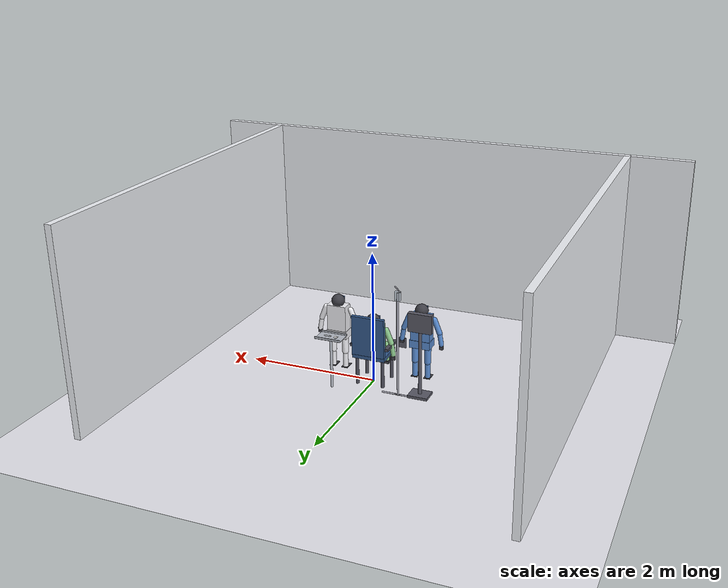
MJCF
<?xml version="1.0" encoding="utf-8"?>
<mujoco model="clinical_injection_sim">
  <compiler angle="degree" coordinate="local"/>

  <option gravity="0 0 -9.81" timestep="0.002">
    <flag warmstart="enable"/>
  </option>

  <default>
    <joint armature="0.01" damping="0.5" limited="true"/>
    <geom condim="3" friction="1.0 0.5 0.5" margin="0.001"/>
  </default>

  <asset>
    <!-- Environment Materials -->
    <material name="floor_tile" rgba="0.92 0.92 0.95 1" specular="0.3"/>
    <material name="wall" rgba="0.95 0.96 0.98 1"/>
    <material name="ceiling" rgba="0.98 0.98 1.0 1"/>

    <!-- Role-Based Robot Materials -->
    <material name="doctor_shell" rgba="0.95 0.95 0.97 1" specular="0.4"/>
    <material name="nurse_shell" rgba="0.35 0.55 0.82 1" specular="0.3"/>
    <material name="patient_gown" rgba="0.55 0.78 0.55 1" specular="0.1"/>
    <material name="robot_joint" rgba="0.25 0.25 0.28 1" specular="0.6"/>
    <material name="robot_visor" rgba="0.1 0.3 0.6 0.8" specular="0.8"/>

    <!-- Medical Equipment Materials -->
    <material name="chair_frame" rgba="0.3 0.3 0.35 1" specular="0.5"/>
    <material name="chair_cushion" rgba="0.2 0.35 0.55 1" specular="0.1"/>
    <material name="syringe_body" rgba="0.85 0.87 0.9 1" specular="0.7"/>
    <material name="syringe_plunger" rgba="0.4 0.4 0.45 1"/>
    <material name="needle" rgba="0.75 0.77 0.8 1" specular="0.9"/>
    <material name="tray_metal" rgba="0.72 0.74 0.78 1" specular="0.8"/>
    <material name="iv_stand" rgba="0.65 0.65 0.7 1" specular="0.6"/>
    <material name="iv_bag" rgba="0.8 0.85 0.9 0.7"/>
    <material name="monitor_screen" rgba="0.05 0.15 0.05 1" specular="0.2"/>
    <material name="monitor_body" rgba="0.35 0.35 0.4 1"/>
  </asset>

  <worldbody>
    <!-- Ground Plane -->
    <geom name="floor" type="plane" size="4 4 0.05" material="floor_tile"/>
    <light name="overhead" pos="0 0 2.8" dir="0 0 -1" diffuse="0.9 0.9 0.95"
           specular="0.3 0.3 0.3" castshadow="true"/>
    <light name="fill_light" pos="2 -2 2.5" dir="-0.5 0.5 -0.7" diffuse="0.3 0.3 0.35"/>

    <!-- Hospital Room Walls -->
    <geom name="wall_back" type="box" size="4 0.05 1.5" pos="0 -3 1.5" material="wall"/>
    <geom name="wall_left" type="box" size="0.05 3 1.5" pos="-3 0 1.5" material="wall"/>
    <geom name="wall_right" type="box" size="0.05 3 1.5" pos="3 0 1.5" material="wall"/>

    <!-- EXAMINATION CHAIR (Patient seating) -->
    <body name="exam_chair" pos="0 0 0">
      <!-- Chair legs -->
      <geom name="chair_leg_fl" type="cylinder" size="0.025" fromto="-0.2 -0.2 0 -0.2 -0.2 0.45"
            material="chair_frame"/>
      <geom name="chair_leg_fr" type="cylinder" size="0.025" fromto="0.2 -0.2 0 0.2 -0.2 0.45"
            material="chair_frame"/>
      <geom name="chair_leg_bl" type="cylinder" size="0.025" fromto="-0.2 0.15 0 -0.2 0.15 0.45"
            material="chair_frame"/>
      <geom name="chair_leg_br" type="cylinder" size="0.025" fromto="0.2 0.15 0 0.2 0.15 0.45"
            material="chair_frame"/>
      <!-- Seat -->
      <geom name="chair_seat" type="box" size="0.25 0.22 0.03" pos="0 0 0.47"
            material="chair_cushion"/>
      <!-- Backrest -->
      <geom name="chair_back" type="box" size="0.25 0.03 0.3" pos="0 0.2 0.8"
            material="chair_cushion"/>
      <!-- Right armrest -->
      <geom name="armrest_r" type="box" size="0.03 0.18 0.02" pos="0.27 0 0.62"
            material="chair_frame"/>
      <!-- Left armrest -->
      <geom name="armrest_l" type="box" size="0.03 0.18 0.02" pos="-0.27 0 0.62"
            material="chair_frame"/>
    </body>

    <!-- PATIENT (Seated G1 Humanoid) -->
    <body name="patient_root" pos="0 0 0.5">
      <!-- Pelvis / Hip -->
      <geom name="patient_pelvis" type="box" size="0.16 0.1 0.06" pos="0 0 0"
            material="patient_gown"/>

      <!-- Torso -->
      <body name="patient_torso" pos="0 0 0.06">
        <geom name="patient_torso_geom" type="box" size="0.15 0.09 0.18"
              pos="0 0 0.18" material="patient_gown"/>

        <!-- Head -->
        <body name="patient_head" pos="0 0 0.42">
          <geom name="patient_head_geom" type="sphere" size="0.1" material="robot_joint"/>
          <geom name="patient_visor" type="box" size="0.07 0.001 0.03" pos="0 -0.09 0.02"
                material="robot_visor"/>
        </body>

        <!-- Right Upper Arm (INJECTION SITE - deltoid region) -->
        <body name="patient_r_shoulder" pos="0.2 0 0.3">
          <joint name="patient_r_shoulder_pitch" type="hinge" axis="1 0 0"
                 range="-90 90" pos="0 0 0"/>
          <geom name="patient_r_upper_arm" type="capsule" size="0.04"
                fromto="0 0 0 0.08 0 -0.2" material="patient_gown"/>

          <!-- Deltoid injection target site -->
          <site name="injection_target" pos="0.04 -0.04 -0.08" size="0.025"
                rgba="1 0.2 0.2 0.5"/>

          <!-- Right Forearm -->
          <body name="patient_r_elbow" pos="0.08 0 -0.2">
            <joint name="patient_r_elbow_flex" type="hinge" axis="1 0 0"
                   range="0 130" pos="0 0 0"/>
            <geom name="patient_r_forearm" type="capsule" size="0.035"
                  fromto="0 0 0 0.03 0 -0.18" material="patient_gown"/>
            <geom name="patient_r_hand" type="box" size="0.03 0.015 0.04"
                  pos="0.03 0 -0.22" material="robot_joint"/>
          </body>
        </body>

        <!-- Left Upper Arm -->
        <body name="patient_l_shoulder" pos="-0.2 0 0.3">
          <joint name="patient_l_shoulder_pitch" type="hinge" axis="1 0 0"
                 range="-90 90" pos="0 0 0"/>
          <geom name="patient_l_upper_arm" type="capsule" size="0.04"
                fromto="0 0 0 -0.08 0 -0.2" material="patient_gown"/>
          <body name="patient_l_elbow" pos="-0.08 0 -0.2">
            <joint name="patient_l_elbow_flex" type="hinge" axis="1 0 0"
                   range="0 130" pos="0 0 0"/>
            <geom name="patient_l_forearm" type="capsule" size="0.035"
                  fromto="0 0 0 -0.03 0 -0.18" material="patient_gown"/>
            <geom name="patient_l_hand" type="box" size="0.03 0.015 0.04"
                  pos="-0.03 0 -0.22" material="robot_joint"/>
          </body>
        </body>
      </body>

      <!-- Right Thigh (seated, horizontal) -->
      <body name="patient_r_hip" pos="0.1 0 0">
        <joint name="patient_r_hip_flex" type="hinge" axis="1 0 0"
               range="-120 30" pos="0 0 0"/>
        <geom name="patient_r_thigh" type="capsule" size="0.05"
              fromto="0 0 0 0 -0.25 0" material="patient_gown"/>
        <body name="patient_r_knee" pos="0 -0.25 0">
          <joint name="patient_r_knee_flex" type="hinge" axis="1 0 0"
                 range="-130 0" pos="0 0 0"/>
          <geom name="patient_r_shin" type="capsule" size="0.04"
                fromto="0 0 0 0 0 -0.25" material="patient_gown"/>
          <geom name="patient_r_foot" type="box" size="0.05 0.08 0.02"
                pos="0 -0.03 -0.27" material="robot_joint"/>
        </body>
      </body>

      <!-- Left Thigh (seated, horizontal) -->
      <body name="patient_l_hip" pos="-0.1 0 0">
        <joint name="patient_l_hip_flex" type="hinge" axis="1 0 0"
               range="-120 30" pos="0 0 0"/>
        <geom name="patient_l_thigh" type="capsule" size="0.05"
              fromto="0 0 0 0 -0.25 0" material="patient_gown"/>
        <body name="patient_l_knee" pos="0 -0.25 0">
          <joint name="patient_l_knee_flex" type="hinge" axis="1 0 0"
                 range="-130 0" pos="0 0 0"/>
          <geom name="patient_l_shin" type="capsule" size="0.04"
                fromto="0 0 0 0 0 -0.25" material="patient_gown"/>
          <geom name="patient_l_foot" type="box" size="0.05 0.08 0.02"
                pos="0 -0.03 -0.27" material="robot_joint"/>
        </body>
      </body>
    </body>

    <!-- DOCTOR (Standing G1 Humanoid with Syringe) -->
    <body name="doctor_root" pos="0.7 -0.3 0">
      <!-- Pelvis -->
      <geom name="doctor_pelvis" type="box" size="0.16 0.1 0.06" pos="0 0 0.55"
            material="doctor_shell"/>

      <!-- Torso -->
      <body name="doctor_torso" pos="0 0 0.61">
        <geom name="doctor_torso_geom" type="box" size="0.15 0.09 0.2"
              pos="0 0 0.2" material="doctor_shell"/>
        <!-- Medical cross emblem -->
        <geom name="doctor_cross_h" type="box" size="0.04 0.001 0.01"
              pos="0 -0.091 0.3" rgba="0.8 0.15 0.15 1"/>
        <geom name="doctor_cross_v" type="box" size="0.01 0.001 0.04"
              pos="0 -0.091 0.3" rgba="0.8 0.15 0.15 1"/>

        <!-- Head -->
        <body name="doctor_head" pos="0 0 0.46">
          <geom name="doctor_head_geom" type="sphere" size="0.1" material="robot_joint"/>
          <geom name="doctor_visor" type="box" size="0.07 0.001 0.03" pos="0 -0.09 0.02"
                material="robot_visor"/>
        </body>

        <!-- Right Arm (holds syringe) -->
        <body name="doctor_r_shoulder" pos="0.2 0 0.34">
          <joint name="doctor_r_shoulder_pitch" type="hinge" axis="1 0 0"
                 range="-180 90" pos="0 0 0"/>
          <joint name="doctor_r_shoulder_yaw" type="hinge" axis="0 0 1"
                 range="-90 90" pos="0 0 0"/>
          <geom name="doctor_r_upper_arm" type="capsule" size="0.04"
                fromto="0 0 0 0.08 0 -0.2" material="doctor_shell"/>
          <body name="doctor_r_elbow" pos="0.08 0 -0.2">
            <joint name="doctor_r_elbow_flex" type="hinge" axis="1 0 0"
                   range="0 140" pos="0 0 0"/>
            <geom name="doctor_r_forearm" type="capsule" size="0.035"
                  fromto="0 0 0 0.03 0 -0.18" material="doctor_shell"/>

            <!-- Hand holding syringe -->
            <body name="doctor_r_hand" pos="0.03 0 -0.2">
              <joint name="doctor_r_wrist" type="hinge" axis="0 1 0"
                     range="-45 45" pos="0 0 0"/>
              <geom name="doctor_hand_geom" type="box" size="0.03 0.02 0.04"
                    material="robot_joint"/>
              <!-- Syringe -->
              <geom name="syringe_barrel" type="cylinder" size="0.012 0.06"
                    pos="0 0 -0.08" material="syringe_body"/>
              <geom name="syringe_plunger" type="cylinder" size="0.008 0.03"
                    pos="0 0 -0.02" material="syringe_plunger"/>
              <geom name="syringe_needle" type="cylinder" size="0.002 0.025"
                    pos="0 0 -0.155" material="needle"/>
              <!-- Needle tip site for contact detection -->
              <site name="needle_tip" pos="0 0 -0.18" size="0.003"
                    rgba="0.8 0.8 0.85 1"/>
            </body>
          </body>
        </body>

        <!-- Left Arm -->
        <body name="doctor_l_shoulder" pos="-0.2 0 0.34">
          <joint name="doctor_l_shoulder_pitch" type="hinge" axis="1 0 0"
                 range="-180 90" pos="0 0 0"/>
          <geom name="doctor_l_upper_arm" type="capsule" size="0.04"
                fromto="0 0 0 -0.08 0 -0.2" material="doctor_shell"/>
          <body name="doctor_l_elbow" pos="-0.08 0 -0.2">
            <joint name="doctor_l_elbow_flex" type="hinge" axis="1 0 0"
                   range="0 140" pos="0 0 0"/>
            <geom name="doctor_l_forearm" type="capsule" size="0.035"
                  fromto="0 0 0 -0.03 0 -0.18" material="doctor_shell"/>
            <geom name="doctor_l_hand" type="box" size="0.03 0.015 0.04"
                  pos="-0.03 0 -0.22" material="robot_joint"/>
          </body>
        </body>
      </body>

      <!-- Right Leg -->
      <body name="doctor_r_hip" pos="0.1 0 0.5">
        <joint name="doctor_r_hip_flex" type="hinge" axis="1 0 0"
               range="-30 90" pos="0 0 0"/>
        <geom name="doctor_r_thigh" type="capsule" size="0.05"
              fromto="0 0 0 0 0 -0.25" material="doctor_shell"/>
        <body name="doctor_r_knee" pos="0 0 -0.25">
          <joint name="doctor_r_knee_flex" type="hinge" axis="1 0 0"
                 range="0 130" pos="0 0 0"/>
          <geom name="doctor_r_shin" type="capsule" size="0.04"
                fromto="0 0 0 0 0 -0.25" material="doctor_shell"/>
          <geom name="doctor_r_foot" type="box" size="0.05 0.08 0.02"
                pos="0 -0.03 -0.27" material="robot_joint"/>
        </body>
      </body>

      <!-- Left Leg -->
      <body name="doctor_l_hip" pos="-0.1 0 0.5">
        <joint name="doctor_l_hip_flex" type="hinge" axis="1 0 0"
               range="-30 90" pos="0 0 0"/>
        <geom name="doctor_l_thigh" type="capsule" size="0.05"
              fromto="0 0 0 0 0 -0.25" material="doctor_shell"/>
        <body name="doctor_l_knee" pos="0 0 -0.25">
          <joint name="doctor_l_knee_flex" type="hinge" axis="1 0 0"
                 range="0 130" pos="0 0 0"/>
          <geom name="doctor_l_shin" type="capsule" size="0.04"
                fromto="0 0 0 0 0 -0.25" material="doctor_shell"/>
          <geom name="doctor_l_foot" type="box" size="0.05 0.08 0.02"
                pos="0 -0.03 -0.27" material="robot_joint"/>
        </body>
      </body>
    </body>

    <!-- NURSE (Standing G1 Humanoid) -->
    <body name="nurse_root" pos="-0.6 -0.4 0">
      <!-- Pelvis -->
      <geom name="nurse_pelvis" type="box" size="0.16 0.1 0.06" pos="0 0 0.55"
            material="nurse_shell"/>

      <!-- Torso -->
      <body name="nurse_torso" pos="0 0 0.61">
        <geom name="nurse_torso_geom" type="box" size="0.15 0.09 0.2"
              pos="0 0 0.2" material="nurse_shell"/>
        <!-- Medical plus badge -->
        <geom name="nurse_badge_h" type="box" size="0.03 0.001 0.008"
              pos="0.1 -0.091 0.3" rgba="1 1 1 1"/>
        <geom name="nurse_badge_v" type="box" size="0.008 0.001 0.03"
              pos="0.1 -0.091 0.3" rgba="1 1 1 1"/>

        <!-- Head -->
        <body name="nurse_head" pos="0 0 0.46">
          <geom name="nurse_head_geom" type="sphere" size="0.1" material="robot_joint"/>
          <geom name="nurse_visor" type="box" size="0.07 0.001 0.03" pos="0 -0.09 0.02"
                material="robot_visor"/>
        </body>

        <!-- Right Arm (holding clipboard/tablet) -->
        <body name="nurse_r_shoulder" pos="0.2 0 0.34">
          <joint name="nurse_r_shoulder_pitch" type="hinge" axis="1 0 0"
                 range="-180 90" pos="0 0 0"/>
          <geom name="nurse_r_upper_arm" type="capsule" size="0.04"
                fromto="0 0 0 0.08 0 -0.2" material="nurse_shell"/>
          <body name="nurse_r_elbow" pos="0.08 0 -0.2">
            <joint name="nurse_r_elbow_flex" type="hinge" axis="1 0 0"
                   range="0 140" pos="0 0 0"/>
            <geom name="nurse_r_forearm" type="capsule" size="0.035"
                  fromto="0 0 0 0.03 0 -0.18" material="nurse_shell"/>
            <body name="nurse_r_hand" pos="0.03 0 -0.2">
              <geom name="nurse_hand_r" type="box" size="0.03 0.015 0.04"
                    material="robot_joint"/>
              <!-- Tablet/clipboard -->
              <geom name="nurse_tablet" type="box" size="0.06 0.005 0.08"
                    pos="0 -0.02 -0.06" material="monitor_body"/>
              <geom name="nurse_tablet_screen" type="box" size="0.05 0.001 0.065"
                    pos="0 -0.026 -0.06" material="monitor_screen"/>
            </body>
          </body>
        </body>

        <!-- Left Arm -->
        <body name="nurse_l_shoulder" pos="-0.2 0 0.34">
          <joint name="nurse_l_shoulder_pitch" type="hinge" axis="1 0 0"
                 range="-180 90" pos="0 0 0"/>
          <geom name="nurse_l_upper_arm" type="capsule" size="0.04"
                fromto="0 0 0 -0.08 0 -0.2" material="nurse_shell"/>
          <body name="nurse_l_elbow" pos="-0.08 0 -0.2">
            <joint name="nurse_l_elbow_flex" type="hinge" axis="1 0 0"
                   range="0 140" pos="0 0 0"/>
            <geom name="nurse_l_forearm" type="capsule" size="0.035"
                  fromto="0 0 0 -0.03 0 -0.18" material="nurse_shell"/>
            <geom name="nurse_l_hand" type="box" size="0.03 0.015 0.04"
                  pos="-0.03 0 -0.22" material="robot_joint"/>
          </body>
        </body>
      </body>

      <!-- Right Leg -->
      <body name="nurse_r_hip" pos="0.1 0 0.5">
        <joint name="nurse_r_hip_flex" type="hinge" axis="1 0 0"
               range="-30 90" pos="0 0 0"/>
        <geom name="nurse_r_thigh" type="capsule" size="0.05"
              fromto="0 0 0 0 0 -0.25" material="nurse_shell"/>
        <body name="nurse_r_knee" pos="0 0 -0.25">
          <joint name="nurse_r_knee_flex" type="hinge" axis="1 0 0"
                 range="0 130" pos="0 0 0"/>
          <geom name="nurse_r_shin" type="capsule" size="0.04"
                fromto="0 0 0 0 0 -0.25" material="nurse_shell"/>
          <geom name="nurse_r_foot" type="box" size="0.05 0.08 0.02"
                pos="0 -0.03 -0.27" material="robot_joint"/>
        </body>
      </body>

      <!-- Left Leg -->
      <body name="nurse_l_hip" pos="-0.1 0 0.5">
        <joint name="nurse_l_hip_flex" type="hinge" axis="1 0 0"
               range="-30 90" pos="0 0 0"/>
        <geom name="nurse_l_thigh" type="capsule" size="0.05"
              fromto="0 0 0 0 0 -0.25" material="nurse_shell"/>
        <body name="nurse_l_knee" pos="0 0 -0.25">
          <joint name="nurse_l_knee_flex" type="hinge" axis="1 0 0"
                 range="0 130" pos="0 0 0"/>
          <geom name="nurse_l_shin" type="capsule" size="0.04"
                fromto="0 0 0 0 0 -0.25" material="nurse_shell"/>
          <geom name="nurse_l_foot" type="box" size="0.05 0.08 0.02"
                pos="0 -0.03 -0.27" material="robot_joint"/>
        </body>
      </body>
    </body>

    <!-- MEDICAL EQUIPMENT -->

    <!-- IV Stand -->
    <body name="iv_stand" pos="-0.5 0.3 0">
      <geom name="iv_pole" type="cylinder" size="0.015 0.8" pos="0 0 0.8"
            material="iv_stand"/>
      <geom name="iv_base_1" type="cylinder" size="0.012 0.15" pos="0.1 0 0.015"
            euler="0 90 0" material="iv_stand"/>
      <geom name="iv_base_2" type="cylinder" size="0.012 0.15" pos="-0.1 0 0.015"
            euler="0 90 0" material="iv_stand"/>
      <geom name="iv_hook" type="cylinder" size="0.008 0.06" pos="0 0 1.65"
            euler="0 45 0" material="iv_stand"/>
      <!-- IV Bag -->
      <geom name="iv_bag" type="box" size="0.04 0.02 0.07" pos="0 0 1.55"
            material="iv_bag"/>
      <!-- IV Tubing (simplified) -->
      <geom name="iv_tube" type="cylinder" size="0.003 0.4" pos="0.02 0 1.1"
            material="syringe_body"/>
    </body>

    <!-- Medical Instrument Tray -->
    <body name="med_tray" pos="0.5 0.4 0">
      <!-- Tray stand -->
      <geom name="tray_leg" type="cylinder" size="0.02 0.4" pos="0 0 0.4"
            material="tray_metal"/>
      <!-- Tray surface -->
      <geom name="tray_surface" type="box" size="0.2 0.12 0.005" pos="0 0 0.8"
            material="tray_metal"/>
      <!-- Tray rim -->
      <geom name="tray_rim_f" type="box" size="0.2 0.005 0.015" pos="0 -0.12 0.815"
            material="tray_metal"/>
      <geom name="tray_rim_b" type="box" size="0.2 0.005 0.015" pos="0 0.12 0.815"
            material="tray_metal"/>
      <!-- Spare syringe on tray -->
      <geom name="spare_syringe" type="cylinder" size="0.01 0.05" pos="0.05 0 0.815"
            euler="0 90 0" material="syringe_body"/>
      <!-- Alcohol swab (small box) -->
      <geom name="swab_packet" type="box" size="0.025 0.025 0.003" pos="-0.08 0 0.81"
            rgba="0.9 0.9 0.9 1"/>
    </body>

    <!-- Vital Signs Monitor -->
    <body name="vitals_monitor" pos="-0.8 0.2 0">
      <geom name="monitor_stand" type="cylinder" size="0.025 0.5" pos="0 0 0.5"
            material="monitor_body"/>
      <geom name="monitor_base" type="box" size="0.15 0.12 0.02" pos="0 0 0.02"
            material="monitor_body"/>
      <geom name="monitor_housing" type="box" size="0.18 0.04 0.14" pos="0 0 1.15"
            material="monitor_body"/>
      <geom name="monitor_display" type="box" size="0.16 0.001 0.12" pos="0 -0.041 1.15"
            material="monitor_screen"/>
    </body>
  </worldbody>

  <!-- Joint Actuators for Injection Procedure -->
  <actuator>
    <!-- Doctor arm actuators for injection motion -->
    <position name="doc_r_shoulder_pitch" joint="doctor_r_shoulder_pitch" kp="50"/>
    <position name="doc_r_shoulder_yaw" joint="doctor_r_shoulder_yaw" kp="50"/>
    <position name="doc_r_elbow" joint="doctor_r_elbow_flex" kp="40"/>
    <position name="doc_r_wrist" joint="doctor_r_wrist" kp="30"/>
    <position name="doc_l_shoulder_pitch" joint="doctor_l_shoulder_pitch" kp="50"/>
    <position name="doc_l_elbow" joint="doctor_l_elbow_flex" kp="40"/>

    <!-- Nurse arm actuators -->
    <position name="nurse_r_shoulder_pitch" joint="nurse_r_shoulder_pitch" kp="50"/>
    <position name="nurse_r_elbow" joint="nurse_r_elbow_flex" kp="40"/>
    <position name="nurse_l_shoulder_pitch" joint="nurse_l_shoulder_pitch" kp="50"/>
    <position name="nurse_l_elbow" joint="nurse_l_elbow_flex" kp="40"/>

    <!-- Patient arm (passive, slight resistance) -->
    <position name="pat_r_shoulder" joint="patient_r_shoulder_pitch" kp="20"/>
    <position name="pat_r_elbow" joint="patient_r_elbow_flex" kp="15"/>
  </actuator>

  <!-- Sensors for monitoring -->
  <sensor>
    <framepos name="needle_pos" objtype="site" objname="needle_tip"/>
    <framepos name="target_pos" objtype="site" objname="injection_target"/>
  </sensor>
</mujoco>
